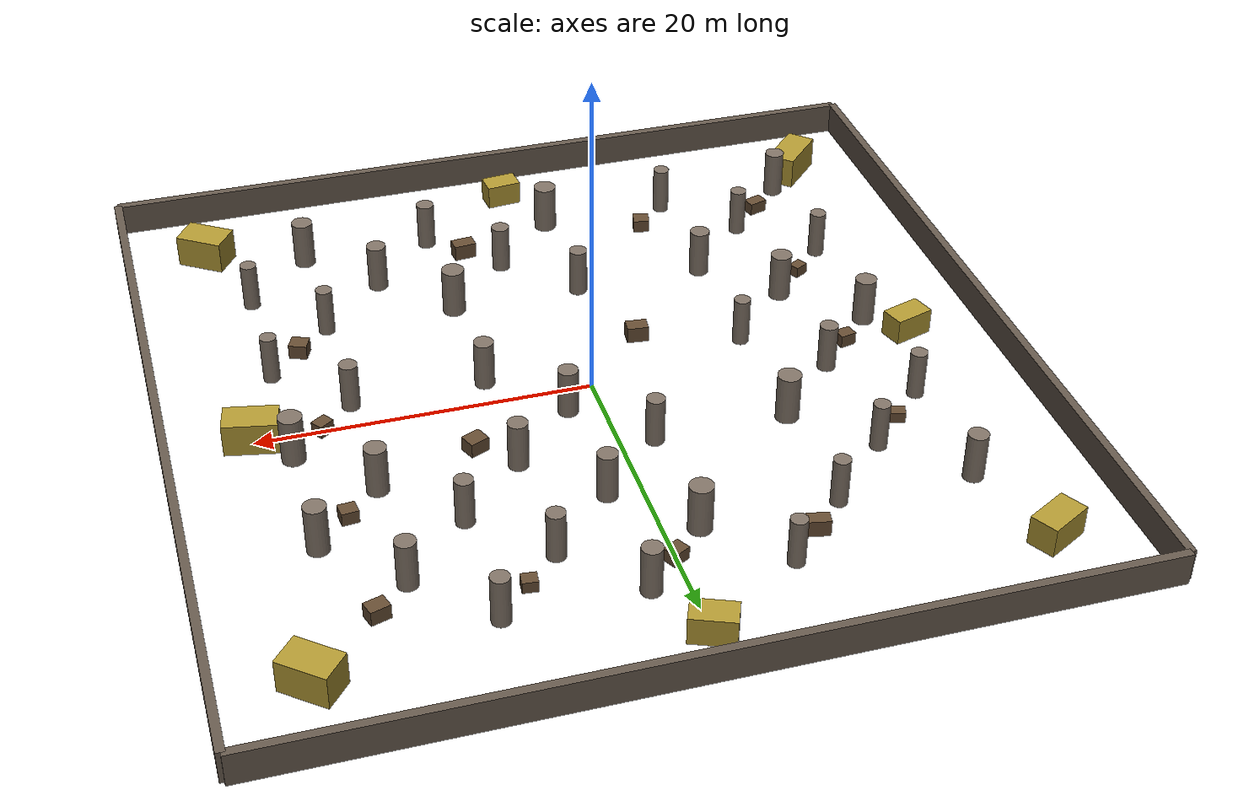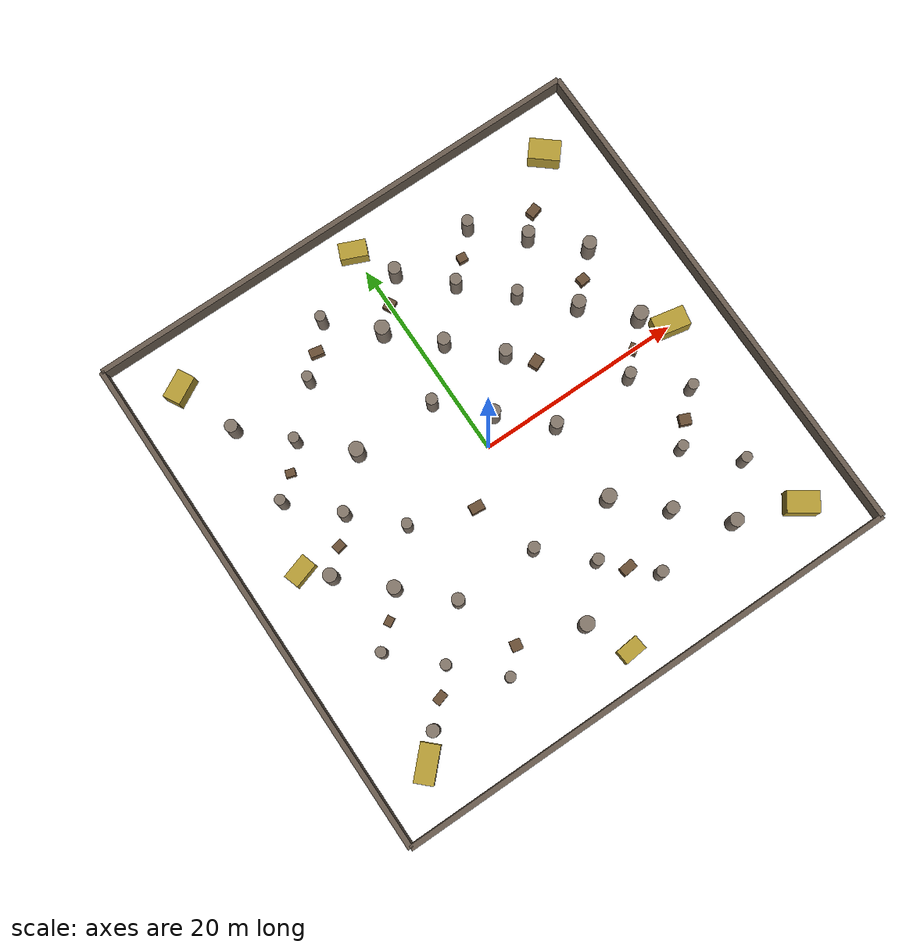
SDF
<sdf version="1.8">
 <world name="mining_arena">
  <physics name="default_physics" type="ode">
   <max_step_size>0.01</max_step_size>
   <real_time_factor>1.0</real_time_factor>
   <real_time_update_rate>100</real_time_update_rate>
   <ode>
    <solver><type>quick</type><iters>50</iters><sor>1.3</sor></solver>
    <constraints>
     <cfm>0.0</cfm>
     <erp>0.2</erp>
     <contact_max_correcting_vel>100.0</contact_max_correcting_vel>
     <contact_surface_layer>0.001</contact_surface_layer>
    </constraints>
   </ode>
  </physics>
  <light name="sun" type="directional">
   <pose>0 0 50 0 0 0</pose>
   <diffuse>0.8 0.8 0.8 1</diffuse>
   <specular>0.2 0.2 0.2 1</specular>
   <attenuation>
    <range>1000</range>
    <constant>0.9</constant>
    <linear>0.01</linear>
    <quadratic>0.001</quadratic>
   </attenuation>
   <direction>-0.5 0.1 -0.9</direction>
  </light>
  <light name="ambient" type="point">
   <pose>0 0 10 0 0 0</pose>
   <diffuse>0.4 0.4 0.35 1</diffuse>
   <specular>0.1 0.1 0.1 1</specular>
   <attenuation>
    <range>100</range>
    <constant>0.5</constant>
    <linear>0.01</linear>
    <quadratic>0.001</quadratic>
   </attenuation>
  </light>
  <scene><ambient>0.3 0.3 0.28 1</ambient><background>0.1 0.1 0.1 1</background><shadows>true</shadows></scene>
  <model name="wall_north">
   <static>true</static>
   <pose>0 25 1 0 0 0</pose>
   <link name="wall_link">
    <collision name="collision"><geometry><box><size>50 0.5 2</size></box></geometry></collision>
    <visual name="visual">
     <geometry><box><size>50 0.5 2</size></box></geometry>
     <material><ambient>0.3 0.25 0.2 1</ambient><diffuse>0.4 0.35 0.3 1</diffuse></material>
    </visual>
   </link>
  </model>
  <model name="wall_south">
   <static>true</static>
   <pose>0 -25 1 0 0 0</pose>
   <link name="wall_link">
    <collision name="collision"><geometry><box><size>50 0.5 2</size></box></geometry></collision>
    <visual name="visual">
     <geometry><box><size>50 0.5 2</size></box></geometry>
     <material><ambient>0.3 0.25 0.2 1</ambient><diffuse>0.4 0.35 0.3 1</diffuse></material>
    </visual>
   </link>
  </model>
  <model name="wall_east">
   <static>true</static>
   <pose>25 0 1 0 0 0</pose>
   <link name="wall_link">
    <collision name="collision"><geometry><box><size>0.5 50 2</size></box></geometry></collision>
    <visual name="visual">
     <geometry><box><size>0.5 50 2</size></box></geometry>
     <material><ambient>0.3 0.25 0.2 1</ambient><diffuse>0.4 0.35 0.3 1</diffuse></material>
    </visual>
   </link>
  </model>
  <model name="wall_west">
   <static>true</static>
   <pose>-25 0 1 0 0 0</pose>
   <link name="wall_link">
    <collision name="collision"><geometry><box><size>0.5 50 2</size></box></geometry></collision>
    <visual name="visual">
     <geometry><box><size>0.5 50 2</size></box></geometry>
     <material><ambient>0.3 0.25 0.2 1</ambient><diffuse>0.4 0.35 0.3 1</diffuse></material>
    </visual>
   </link>
  </model>
  <model name="pillar_01">
   <static>true</static>
   <pose>-18 -18 1.5 0 0 0</pose>
   <link name="link">
    <collision name="c">
     <geometry><cylinder><radius>0.6</radius><length>3</length></cylinder></geometry>
    </collision>
    <visual name="v">
     <geometry><cylinder><radius>0.6</radius><length>3</length></cylinder></geometry>
     <material><ambient>0.35 0.3 0.25 1</ambient><diffuse>0.5 0.45 0.4 1</diffuse></material>
    </visual>
   </link>
  </model>
  <model name="pillar_02">
   <static>true</static>
   <pose>-10 -18 1.5 0 0 0</pose>
   <link name="link">
    <collision name="c">
     <geometry><cylinder><radius>0.5</radius><length>3</length></cylinder></geometry>
    </collision>
    <visual name="v">
     <geometry><cylinder><radius>0.5</radius><length>3</length></cylinder></geometry>
     <material><ambient>0.35 0.3 0.25 1</ambient><diffuse>0.5 0.45 0.4 1</diffuse></material>
    </visual>
   </link>
  </model>
  <model name="pillar_03">
   <static>true</static>
   <pose>-2 -18 1.5 0 0 0</pose>
   <link name="link">
    <collision name="c">
     <geometry><cylinder><radius>0.7</radius><length>3</length></cylinder></geometry>
    </collision>
    <visual name="v">
     <geometry><cylinder><radius>0.7</radius><length>3</length></cylinder></geometry>
     <material><ambient>0.35 0.3 0.25 1</ambient><diffuse>0.5 0.45 0.4 1</diffuse></material>
    </visual>
   </link>
  </model>
  <model name="pillar_04">
   <static>true</static>
   <pose>6 -18 1.5 0 0 0</pose>
   <link name="link">
    <collision name="c">
     <geometry><cylinder><radius>0.55</radius><length>3</length></cylinder></geometry>
    </collision>
    <visual name="v">
     <geometry><cylinder><radius>0.55</radius><length>3</length></cylinder></geometry>
     <material><ambient>0.35 0.3 0.25 1</ambient><diffuse>0.5 0.45 0.4 1</diffuse></material>
    </visual>
   </link>
  </model>
  <model name="pillar_05">
   <static>true</static>
   <pose>14 -18 1.5 0 0 0</pose>
   <link name="link">
    <collision name="c">
     <geometry><cylinder><radius>0.65</radius><length>3</length></cylinder></geometry>
    </collision>
    <visual name="v">
     <geometry><cylinder><radius>0.65</radius><length>3</length></cylinder></geometry>
     <material><ambient>0.35 0.3 0.25 1</ambient><diffuse>0.5 0.45 0.4 1</diffuse></material>
    </visual>
   </link>
  </model>
  <model name="pillar_06">
   <static>true</static>
   <pose>-18 -10 1.5 0 0 0</pose>
   <link name="link">
    <collision name="c">
     <geometry><cylinder><radius>0.5</radius><length>3</length></cylinder></geometry>
    </collision>
    <visual name="v">
     <geometry><cylinder><radius>0.5</radius><length>3</length></cylinder></geometry>
     <material><ambient>0.35 0.3 0.25 1</ambient><diffuse>0.5 0.45 0.4 1</diffuse></material>
    </visual>
   </link>
  </model>
  <model name="pillar_07">
   <static>true</static>
   <pose>-10 -10 1.5 0 0 0</pose>
   <link name="link">
    <collision name="c">
     <geometry><cylinder><radius>0.6</radius><length>3</length></cylinder></geometry>
    </collision>
    <visual name="v">
     <geometry><cylinder><radius>0.6</radius><length>3</length></cylinder></geometry>
     <material><ambient>0.35 0.3 0.25 1</ambient><diffuse>0.5 0.45 0.4 1</diffuse></material>
    </visual>
   </link>
  </model>
  <model name="pillar_08">
   <static>true</static>
   <pose>-2 -10 1.5 0 0 0</pose>
   <link name="link">
    <collision name="c">
     <geometry><cylinder><radius>0.55</radius><length>3</length></cylinder></geometry>
    </collision>
    <visual name="v">
     <geometry><cylinder><radius>0.55</radius><length>3</length></cylinder></geometry>
     <material><ambient>0.35 0.3 0.25 1</ambient><diffuse>0.5 0.45 0.4 1</diffuse></material>
    </visual>
   </link>
  </model>
  <model name="pillar_09">
   <static>true</static>
   <pose>6 -10 1.5 0 0 0</pose>
   <link name="link">
    <collision name="c">
     <geometry><cylinder><radius>0.7</radius><length>3</length></cylinder></geometry>
    </collision>
    <visual name="v">
     <geometry><cylinder><radius>0.7</radius><length>3</length></cylinder></geometry>
     <material><ambient>0.35 0.3 0.25 1</ambient><diffuse>0.5 0.45 0.4 1</diffuse></material>
    </visual>
   </link>
  </model>
  <model name="pillar_10">
   <static>true</static>
   <pose>14 -10 1.5 0 0 0</pose>
   <link name="link">
    <collision name="c">
     <geometry><cylinder><radius>0.5</radius><length>3</length></cylinder></geometry>
    </collision>
    <visual name="v">
     <geometry><cylinder><radius>0.5</radius><length>3</length></cylinder></geometry>
     <material><ambient>0.35 0.3 0.25 1</ambient><diffuse>0.5 0.45 0.4 1</diffuse></material>
    </visual>
   </link>
  </model>
  <model name="pillar_11">
   <static>true</static>
   <pose>-18 -2 1.5 0 0 0</pose>
   <link name="link">
    <collision name="c">
     <geometry><cylinder><radius>0.65</radius><length>3</length></cylinder></geometry>
    </collision>
    <visual name="v">
     <geometry><cylinder><radius>0.65</radius><length>3</length></cylinder></geometry>
     <material><ambient>0.35 0.3 0.25 1</ambient><diffuse>0.5 0.45 0.4 1</diffuse></material>
    </visual>
   </link>
  </model>
  <model name="pillar_12">
   <static>true</static>
   <pose>-10 -2 1.5 0 0 0</pose>
   <link name="link">
    <collision name="c">
     <geometry><cylinder><radius>0.5</radius><length>3</length></cylinder></geometry>
    </collision>
    <visual name="v">
     <geometry><cylinder><radius>0.5</radius><length>3</length></cylinder></geometry>
     <material><ambient>0.35 0.3 0.25 1</ambient><diffuse>0.5 0.45 0.4 1</diffuse></material>
    </visual>
   </link>
  </model>
  <model name="pillar_13">
   <static>true</static>
   <pose>6 -2 1.5 0 0 0</pose>
   <link name="link">
    <collision name="c">
     <geometry><cylinder><radius>0.6</radius><length>3</length></cylinder></geometry>
    </collision>
    <visual name="v">
     <geometry><cylinder><radius>0.6</radius><length>3</length></cylinder></geometry>
     <material><ambient>0.35 0.3 0.25 1</ambient><diffuse>0.5 0.45 0.4 1</diffuse></material>
    </visual>
   </link>
  </model>
  <model name="pillar_14">
   <static>true</static>
   <pose>14 -2 1.5 0 0 0</pose>
   <link name="link">
    <collision name="c">
     <geometry><cylinder><radius>0.55</radius><length>3</length></cylinder></geometry>
    </collision>
    <visual name="v">
     <geometry><cylinder><radius>0.55</radius><length>3</length></cylinder></geometry>
     <material><ambient>0.35 0.3 0.25 1</ambient><diffuse>0.5 0.45 0.4 1</diffuse></material>
    </visual>
   </link>
  </model>
  <model name="pillar_15">
   <static>true</static>
   <pose>-18 6 1.5 0 0 0</pose>
   <link name="link">
    <collision name="c">
     <geometry><cylinder><radius>0.5</radius><length>3</length></cylinder></geometry>
    </collision>
    <visual name="v">
     <geometry><cylinder><radius>0.5</radius><length>3</length></cylinder></geometry>
     <material><ambient>0.35 0.3 0.25 1</ambient><diffuse>0.5 0.45 0.4 1</diffuse></material>
    </visual>
   </link>
  </model>
  <model name="pillar_16">
   <static>true</static>
   <pose>-10 6 1.5 0 0 0</pose>
   <link name="link">
    <collision name="c">
     <geometry><cylinder><radius>0.7</radius><length>3</length></cylinder></geometry>
    </collision>
    <visual name="v">
     <geometry><cylinder><radius>0.7</radius><length>3</length></cylinder></geometry>
     <material><ambient>0.35 0.3 0.25 1</ambient><diffuse>0.5 0.45 0.4 1</diffuse></material>
    </visual>
   </link>
  </model>
  <model name="pillar_17">
   <static>true</static>
   <pose>-2 6 1.5 0 0 0</pose>
   <link name="link">
    <collision name="c">
     <geometry><cylinder><radius>0.55</radius><length>3</length></cylinder></geometry>
    </collision>
    <visual name="v">
     <geometry><cylinder><radius>0.55</radius><length>3</length></cylinder></geometry>
     <material><ambient>0.35 0.3 0.25 1</ambient><diffuse>0.5 0.45 0.4 1</diffuse></material>
    </visual>
   </link>
  </model>
  <model name="pillar_18">
   <static>true</static>
   <pose>6 6 1.5 0 0 0</pose>
   <link name="link">
    <collision name="c">
     <geometry><cylinder><radius>0.6</radius><length>3</length></cylinder></geometry>
    </collision>
    <visual name="v">
     <geometry><cylinder><radius>0.6</radius><length>3</length></cylinder></geometry>
     <material><ambient>0.35 0.3 0.25 1</ambient><diffuse>0.5 0.45 0.4 1</diffuse></material>
    </visual>
   </link>
  </model>
  <model name="pillar_19">
   <static>true</static>
   <pose>14 6 1.5 0 0 0</pose>
   <link name="link">
    <collision name="c">
     <geometry><cylinder><radius>0.65</radius><length>3</length></cylinder></geometry>
    </collision>
    <visual name="v">
     <geometry><cylinder><radius>0.65</radius><length>3</length></cylinder></geometry>
     <material><ambient>0.35 0.3 0.25 1</ambient><diffuse>0.5 0.45 0.4 1</diffuse></material>
    </visual>
   </link>
  </model>
  <model name="pillar_20">
   <static>true</static>
   <pose>-18 14 1.5 0 0 0</pose>
   <link name="link">
    <collision name="c">
     <geometry><cylinder><radius>0.6</radius><length>3</length></cylinder></geometry>
    </collision>
    <visual name="v">
     <geometry><cylinder><radius>0.6</radius><length>3</length></cylinder></geometry>
     <material><ambient>0.35 0.3 0.25 1</ambient><diffuse>0.5 0.45 0.4 1</diffuse></material>
    </visual>
   </link>
  </model>
  <model name="pillar_21">
   <static>true</static>
   <pose>-10 14 1.5 0 0 0</pose>
   <link name="link">
    <collision name="c">
     <geometry><cylinder><radius>0.5</radius><length>3</length></cylinder></geometry>
    </collision>
    <visual name="v">
     <geometry><cylinder><radius>0.5</radius><length>3</length></cylinder></geometry>
     <material><ambient>0.35 0.3 0.25 1</ambient><diffuse>0.5 0.45 0.4 1</diffuse></material>
    </visual>
   </link>
  </model>
  <model name="pillar_22">
   <static>true</static>
   <pose>-2 14 1.5 0 0 0</pose>
   <link name="link">
    <collision name="c">
     <geometry><cylinder><radius>0.7</radius><length>3</length></cylinder></geometry>
    </collision>
    <visual name="v">
     <geometry><cylinder><radius>0.7</radius><length>3</length></cylinder></geometry>
     <material><ambient>0.35 0.3 0.25 1</ambient><diffuse>0.5 0.45 0.4 1</diffuse></material>
    </visual>
   </link>
  </model>
  <model name="pillar_23">
   <static>true</static>
   <pose>6 14 1.5 0 0 0</pose>
   <link name="link">
    <collision name="c">
     <geometry><cylinder><radius>0.55</radius><length>3</length></cylinder></geometry>
    </collision>
    <visual name="v">
     <geometry><cylinder><radius>0.55</radius><length>3</length></cylinder></geometry>
     <material><ambient>0.35 0.3 0.25 1</ambient><diffuse>0.5 0.45 0.4 1</diffuse></material>
    </visual>
   </link>
  </model>
  <model name="pillar_24">
   <static>true</static>
   <pose>14 14 1.5 0 0 0</pose>
   <link name="link">
    <collision name="c">
     <geometry><cylinder><radius>0.6</radius><length>3</length></cylinder></geometry>
    </collision>
    <visual name="v">
     <geometry><cylinder><radius>0.6</radius><length>3</length></cylinder></geometry>
     <material><ambient>0.35 0.3 0.25 1</ambient><diffuse>0.5 0.45 0.4 1</diffuse></material>
    </visual>
   </link>
  </model>
  <model name="pillar_25">
   <static>true</static>
   <pose>-14 -14 1.5 0 0 0</pose>
   <link name="link">
    <collision name="c">
     <geometry><cylinder><radius>0.5</radius><length>3</length></cylinder></geometry>
    </collision>
    <visual name="v">
     <geometry><cylinder><radius>0.5</radius><length>3</length></cylinder></geometry>
     <material><ambient>0.35 0.3 0.25 1</ambient><diffuse>0.5 0.45 0.4 1</diffuse></material>
    </visual>
   </link>
  </model>
  <model name="pillar_26">
   <static>true</static>
   <pose>2 -14 1.5 0 0 0</pose>
   <link name="link">
    <collision name="c">
     <geometry><cylinder><radius>0.55</radius><length>3</length></cylinder></geometry>
    </collision>
    <visual name="v">
     <geometry><cylinder><radius>0.55</radius><length>3</length></cylinder></geometry>
     <material><ambient>0.35 0.3 0.25 1</ambient><diffuse>0.5 0.45 0.4 1</diffuse></material>
    </visual>
   </link>
  </model>
  <model name="pillar_27">
   <static>true</static>
   <pose>10 -14 1.5 0 0 0</pose>
   <link name="link">
    <collision name="c">
     <geometry><cylinder><radius>0.6</radius><length>3</length></cylinder></geometry>
    </collision>
    <visual name="v">
     <geometry><cylinder><radius>0.6</radius><length>3</length></cylinder></geometry>
     <material><ambient>0.35 0.3 0.25 1</ambient><diffuse>0.5 0.45 0.4 1</diffuse></material>
    </visual>
   </link>
  </model>
  <model name="pillar_28">
   <static>true</static>
   <pose>18 -14 1.5 0 0 0</pose>
   <link name="link">
    <collision name="c">
     <geometry><cylinder><radius>0.5</radius><length>3</length></cylinder></geometry>
    </collision>
    <visual name="v">
     <geometry><cylinder><radius>0.5</radius><length>3</length></cylinder></geometry>
     <material><ambient>0.35 0.3 0.25 1</ambient><diffuse>0.5 0.45 0.4 1</diffuse></material>
    </visual>
   </link>
  </model>
  <model name="pillar_29">
   <static>true</static>
   <pose>-14 -6 1.5 0 0 0</pose>
   <link name="link">
    <collision name="c">
     <geometry><cylinder><radius>0.65</radius><length>3</length></cylinder></geometry>
    </collision>
    <visual name="v">
     <geometry><cylinder><radius>0.65</radius><length>3</length></cylinder></geometry>
     <material><ambient>0.35 0.3 0.25 1</ambient><diffuse>0.5 0.45 0.4 1</diffuse></material>
    </visual>
   </link>
  </model>
  <model name="pillar_30">
   <static>true</static>
   <pose>18 -6 1.5 0 0 0</pose>
   <link name="link">
    <collision name="c">
     <geometry><cylinder><radius>0.5</radius><length>3</length></cylinder></geometry>
    </collision>
    <visual name="v">
     <geometry><cylinder><radius>0.5</radius><length>3</length></cylinder></geometry>
     <material><ambient>0.35 0.3 0.25 1</ambient><diffuse>0.5 0.45 0.4 1</diffuse></material>
    </visual>
   </link>
  </model>
  <model name="pillar_31">
   <static>true</static>
   <pose>-14 2 1.5 0 0 0</pose>
   <link name="link">
    <collision name="c">
     <geometry><cylinder><radius>0.55</radius><length>3</length></cylinder></geometry>
    </collision>
    <visual name="v">
     <geometry><cylinder><radius>0.55</radius><length>3</length></cylinder></geometry>
     <material><ambient>0.35 0.3 0.25 1</ambient><diffuse>0.5 0.45 0.4 1</diffuse></material>
    </visual>
   </link>
  </model>
  <model name="pillar_32">
   <static>true</static>
   <pose>2 2 1.5 0 0 0</pose>
   <link name="link">
    <collision name="c">
     <geometry><cylinder><radius>0.6</radius><length>3</length></cylinder></geometry>
    </collision>
    <visual name="v">
     <geometry><cylinder><radius>0.6</radius><length>3</length></cylinder></geometry>
     <material><ambient>0.35 0.3 0.25 1</ambient><diffuse>0.5 0.45 0.4 1</diffuse></material>
    </visual>
   </link>
  </model>
  <model name="pillar_33">
   <static>true</static>
   <pose>18 2 1.5 0 0 0</pose>
   <link name="link">
    <collision name="c">
     <geometry><cylinder><radius>0.7</radius><length>3</length></cylinder></geometry>
    </collision>
    <visual name="v">
     <geometry><cylinder><radius>0.7</radius><length>3</length></cylinder></geometry>
     <material><ambient>0.35 0.3 0.25 1</ambient><diffuse>0.5 0.45 0.4 1</diffuse></material>
    </visual>
   </link>
  </model>
  <model name="pillar_34">
   <static>true</static>
   <pose>-14 10 1.5 0 0 0</pose>
   <link name="link">
    <collision name="c">
     <geometry><cylinder><radius>0.5</radius><length>3</length></cylinder></geometry>
    </collision>
    <visual name="v">
     <geometry><cylinder><radius>0.5</radius><length>3</length></cylinder></geometry>
     <material><ambient>0.35 0.3 0.25 1</ambient><diffuse>0.5 0.45 0.4 1</diffuse></material>
    </visual>
   </link>
  </model>
  <model name="pillar_35">
   <static>true</static>
   <pose>2 10 1.5 0 0 0</pose>
   <link name="link">
    <collision name="c">
     <geometry><cylinder><radius>0.6</radius><length>3</length></cylinder></geometry>
    </collision>
    <visual name="v">
     <geometry><cylinder><radius>0.6</radius><length>3</length></cylinder></geometry>
     <material><ambient>0.35 0.3 0.25 1</ambient><diffuse>0.5 0.45 0.4 1</diffuse></material>
    </visual>
   </link>
  </model>
  <model name="pillar_36">
   <static>true</static>
   <pose>10 10 1.5 0 0 0</pose>
   <link name="link">
    <collision name="c">
     <geometry><cylinder><radius>0.55</radius><length>3</length></cylinder></geometry>
    </collision>
    <visual name="v">
     <geometry><cylinder><radius>0.55</radius><length>3</length></cylinder></geometry>
     <material><ambient>0.35 0.3 0.25 1</ambient><diffuse>0.5 0.45 0.4 1</diffuse></material>
    </visual>
   </link>
  </model>
  <model name="pillar_37">
   <static>true</static>
   <pose>18 10 1.5 0 0 0</pose>
   <link name="link">
    <collision name="c">
     <geometry><cylinder><radius>0.65</radius><length>3</length></cylinder></geometry>
    </collision>
    <visual name="v">
     <geometry><cylinder><radius>0.65</radius><length>3</length></cylinder></geometry>
     <material><ambient>0.35 0.3 0.25 1</ambient><diffuse>0.5 0.45 0.4 1</diffuse></material>
    </visual>
   </link>
  </model>
  <model name="pillar_38">
   <static>true</static>
   <pose>-6 18 1.5 0 0 0</pose>
   <link name="link">
    <collision name="c">
     <geometry><cylinder><radius>0.5</radius><length>3</length></cylinder></geometry>
    </collision>
    <visual name="v">
     <geometry><cylinder><radius>0.5</radius><length>3</length></cylinder></geometry>
     <material><ambient>0.35 0.3 0.25 1</ambient><diffuse>0.5 0.45 0.4 1</diffuse></material>
    </visual>
   </link>
  </model>
  <model name="pillar_39">
   <static>true</static>
   <pose>2 18 1.5 0 0 0</pose>
   <link name="link">
    <collision name="c">
     <geometry><cylinder><radius>0.6</radius><length>3</length></cylinder></geometry>
    </collision>
    <visual name="v">
     <geometry><cylinder><radius>0.6</radius><length>3</length></cylinder></geometry>
     <material><ambient>0.35 0.3 0.25 1</ambient><diffuse>0.5 0.45 0.4 1</diffuse></material>
    </visual>
   </link>
  </model>
  <model name="pillar_40">
   <static>true</static>
   <pose>10 18 1.5 0 0 0</pose>
   <link name="link">
    <collision name="c">
     <geometry><cylinder><radius>0.55</radius><length>3</length></cylinder></geometry>
    </collision>
    <visual name="v">
     <geometry><cylinder><radius>0.55</radius><length>3</length></cylinder></geometry>
     <material><ambient>0.35 0.3 0.25 1</ambient><diffuse>0.5 0.45 0.4 1</diffuse></material>
    </visual>
   </link>
  </model>
  <model name="ore_pile_01">
   <static>true</static>
   <pose>-16 -16 0.4 0 0 0.3</pose>
   <link name="link">
    <collision name="c"><geometry><box><size>1.2 0.8 0.8</size></box></geometry></collision>
    <visual name="v">
     <geometry><box><size>1.2 0.8 0.8</size></box></geometry>
     <material><ambient>0.25 0.2 0.15 1</ambient><diffuse>0.4 0.3 0.2 1</diffuse></material>
    </visual>
   </link>
  </model>
  <model name="ore_pile_02">
   <static>true</static>
   <pose>-8 -16 0.4 0 0 -0.2</pose>
   <link name="link">
    <collision name="c"><geometry><box><size>1.0 1.0 0.8</size></box></geometry></collision>
    <visual name="v">
     <geometry><box><size>1.0 1.0 0.8</size></box></geometry>
     <material><ambient>0.25 0.2 0.15 1</ambient><diffuse>0.4 0.3 0.2 1</diffuse></material>
    </visual>
   </link>
  </model>
  <model name="ore_pile_03">
   <static>true</static>
   <pose>4 -16 0.5 0 0 0.1</pose>
   <link name="link">
    <collision name="c"><geometry><box><size>1.4 0.9 1.0</size></box></geometry></collision>
    <visual name="v">
     <geometry><box><size>1.4 0.9 1.0</size></box></geometry>
     <material><ambient>0.25 0.2 0.15 1</ambient><diffuse>0.4 0.3 0.2 1</diffuse></material>
    </visual>
   </link>
  </model>
  <model name="ore_pile_04">
   <static>true</static>
   <pose>-16 -8 0.35 0 0 0.5</pose>
   <link name="link">
    <collision name="c"><geometry><box><size>0.9 0.7 0.7</size></box></geometry></collision>
    <visual name="v">
     <geometry><box><size>0.9 0.7 0.7</size></box></geometry>
     <material><ambient>0.25 0.2 0.15 1</ambient><diffuse>0.4 0.3 0.2 1</diffuse></material>
    </visual>
   </link>
  </model>
  <model name="ore_pile_05">
   <static>true</static>
   <pose>16 -8 0.45 0 0 -0.4</pose>
   <link name="link">
    <collision name="c"><geometry><box><size>1.1 1.0 0.9</size></box></geometry></collision>
    <visual name="v">
     <geometry><box><size>1.1 1.0 0.9</size></box></geometry>
     <material><ambient>0.25 0.2 0.15 1</ambient><diffuse>0.4 0.3 0.2 1</diffuse></material>
    </visual>
   </link>
  </model>
  <model name="ore_pile_06">
   <static>true</static>
   <pose>-16 0 0.4 0 0 0.2</pose>
   <link name="link">
    <collision name="c"><geometry><box><size>1.0 0.8 0.8</size></box></geometry></collision>
    <visual name="v">
     <geometry><box><size>1.0 0.8 0.8</size></box></geometry>
     <material><ambient>0.25 0.2 0.15 1</ambient><diffuse>0.4 0.3 0.2 1</diffuse></material>
    </visual>
   </link>
  </model>
  <model name="ore_pile_07">
   <static>true</static>
   <pose>-4 -4 0.5 0 0 -0.1</pose>
   <link name="link">
    <collision name="c"><geometry><box><size>1.3 0.9 1.0</size></box></geometry></collision>
    <visual name="v">
     <geometry><box><size>1.3 0.9 1.0</size></box></geometry>
     <material><ambient>0.25 0.2 0.15 1</ambient><diffuse>0.4 0.3 0.2 1</diffuse></material>
    </visual>
   </link>
  </model>
  <model name="ore_pile_08">
   <static>true</static>
   <pose>16 0 0.4 0 0 0.6</pose>
   <link name="link">
    <collision name="c"><geometry><box><size>1.0 0.8 0.8</size></box></geometry></collision>
    <visual name="v">
     <geometry><box><size>1.0 0.8 0.8</size></box></geometry>
     <material><ambient>0.25 0.2 0.15 1</ambient><diffuse>0.4 0.3 0.2 1</diffuse></material>
    </visual>
   </link>
  </model>
  <model name="ore_pile_09">
   <static>true</static>
   <pose>-16 8 0.35 0 0 -0.3</pose>
   <link name="link">
    <collision name="c"><geometry><box><size>0.9 0.7 0.7</size></box></geometry></collision>
    <visual name="v">
     <geometry><box><size>0.9 0.7 0.7</size></box></geometry>
     <material><ambient>0.25 0.2 0.15 1</ambient><diffuse>0.4 0.3 0.2 1</diffuse></material>
    </visual>
   </link>
  </model>
  <model name="ore_pile_10">
   <static>true</static>
   <pose>8 4 0.45 0 0 0.4</pose>
   <link name="link">
    <collision name="c"><geometry><box><size>1.2 1.0 0.9</size></box></geometry></collision>
    <visual name="v">
     <geometry><box><size>1.2 1.0 0.9</size></box></geometry>
     <material><ambient>0.25 0.2 0.15 1</ambient><diffuse>0.4 0.3 0.2 1</diffuse></material>
    </visual>
   </link>
  </model>
  <model name="ore_pile_11">
   <static>true</static>
   <pose>16 8 0.4 0 0 0.1</pose>
   <link name="link">
    <collision name="c"><geometry><box><size>1.0 0.9 0.8</size></box></geometry></collision>
    <visual name="v">
     <geometry><box><size>1.0 0.9 0.8</size></box></geometry>
     <material><ambient>0.25 0.2 0.15 1</ambient><diffuse>0.4 0.3 0.2 1</diffuse></material>
    </visual>
   </link>
  </model>
  <model name="ore_pile_12">
   <static>true</static>
   <pose>-8 16 0.5 0 0 -0.2</pose>
   <link name="link">
    <collision name="c"><geometry><box><size>1.3 0.8 1.0</size></box></geometry></collision>
    <visual name="v">
     <geometry><box><size>1.3 0.8 1.0</size></box></geometry>
     <material><ambient>0.25 0.2 0.15 1</ambient><diffuse>0.4 0.3 0.2 1</diffuse></material>
    </visual>
   </link>
  </model>
  <model name="ore_pile_13">
   <static>true</static>
   <pose>0 16 0.4 0 0 0.5</pose>
   <link name="link">
    <collision name="c"><geometry><box><size>1.1 0.9 0.8</size></box></geometry></collision>
    <visual name="v">
     <geometry><box><size>1.1 0.9 0.8</size></box></geometry>
     <material><ambient>0.25 0.2 0.15 1</ambient><diffuse>0.4 0.3 0.2 1</diffuse></material>
    </visual>
   </link>
  </model>
  <model name="ore_pile_14">
   <static>true</static>
   <pose>8 16 0.35 0 0 -0.1</pose>
   <link name="link">
    <collision name="c"><geometry><box><size>0.9 0.8 0.7</size></box></geometry></collision>
    <visual name="v">
     <geometry><box><size>0.9 0.8 0.7</size></box></geometry>
     <material><ambient>0.25 0.2 0.15 1</ambient><diffuse>0.4 0.3 0.2 1</diffuse></material>
    </visual>
   </link>
  </model>
  <model name="ore_pile_15">
   <static>true</static>
   <pose>16 16 0.45 0 0 0.3</pose>
   <link name="link">
    <collision name="c"><geometry><box><size>1.2 0.9 0.9</size></box></geometry></collision>
    <visual name="v">
     <geometry><box><size>1.2 0.9 0.9</size></box></geometry>
     <material><ambient>0.25 0.2 0.15 1</ambient><diffuse>0.4 0.3 0.2 1</diffuse></material>
    </visual>
   </link>
  </model>
  <model name="equipment_01">
   <static>true</static>
   <pose>-20 -20 1.0 0 0 0.8</pose>
   <link name="link">
    <collision name="c"><geometry><box><size>3.5 1.8 2.0</size></box></geometry></collision>
    <visual name="v">
     <geometry><box><size>3.5 1.8 2.0</size></box></geometry>
     <material><ambient>0.5 0.4 0.1 1</ambient><diffuse>0.7 0.6 0.2 1</diffuse></material>
    </visual>
   </link>
  </model>
  <model name="equipment_02">
   <static>true</static>
   <pose>20 -20 1.0 0 0 -0.6</pose>
   <link name="link">
    <collision name="c"><geometry><box><size>3.0 2.0 2.0</size></box></geometry></collision>
    <visual name="v">
     <geometry><box><size>3.0 2.0 2.0</size></box></geometry>
     <material><ambient>0.5 0.4 0.1 1</ambient><diffuse>0.7 0.6 0.2 1</diffuse></material>
    </visual>
   </link>
  </model>
  <model name="equipment_03">
   <static>true</static>
   <pose>-20 0 0.8 0 0 0.3</pose>
   <link name="link">
    <collision name="c"><geometry><box><size>2.5 1.5 1.6</size></box></geometry></collision>
    <visual name="v">
     <geometry><box><size>2.5 1.5 1.6</size></box></geometry>
     <material><ambient>0.5 0.4 0.1 1</ambient><diffuse>0.7 0.6 0.2 1</diffuse></material>
    </visual>
   </link>
  </model>
  <model name="equipment_04">
   <static>true</static>
   <pose>20 0 1.0 0 0 -0.2</pose>
   <link name="link">
    <collision name="c"><geometry><box><size>3.2 1.9 2.0</size></box></geometry></collision>
    <visual name="v">
     <geometry><box><size>3.2 1.9 2.0</size></box></geometry>
     <material><ambient>0.5 0.4 0.1 1</ambient><diffuse>0.7 0.6 0.2 1</diffuse></material>
    </visual>
   </link>
  </model>
  <model name="equipment_05">
   <static>true</static>
   <pose>-20 20 0.9 0 0 0.5</pose>
   <link name="link">
    <collision name="c"><geometry><box><size>2.8 1.7 1.8</size></box></geometry></collision>
    <visual name="v">
     <geometry><box><size>2.8 1.7 1.8</size></box></geometry>
     <material><ambient>0.5 0.4 0.1 1</ambient><diffuse>0.7 0.6 0.2 1</diffuse></material>
    </visual>
   </link>
  </model>
  <model name="equipment_06">
   <static>true</static>
   <pose>20 20 1.0 0 0 -0.7</pose>
   <link name="link">
    <collision name="c"><geometry><box><size>3.0 2.0 2.0</size></box></geometry></collision>
    <visual name="v">
     <geometry><box><size>3.0 2.0 2.0</size></box></geometry>
     <material><ambient>0.5 0.4 0.1 1</ambient><diffuse>0.7 0.6 0.2 1</diffuse></material>
    </visual>
   </link>
  </model>
  <model name="equipment_07">
   <static>true</static>
   <pose>0 -22 0.75 0 0 0.1</pose>
   <link name="link">
    <collision name="c"><geometry><box><size>2.2 1.4 1.5</size></box></geometry></collision>
    <visual name="v">
     <geometry><box><size>2.2 1.4 1.5</size></box></geometry>
     <material><ambient>0.5 0.4 0.1 1</ambient><diffuse>0.7 0.6 0.2 1</diffuse></material>
    </visual>
   </link>
  </model>
  <model name="equipment_08">
   <static>true</static>
   <pose>0 22 0.85 0 0 -0.4</pose>
   <link name="link">
    <collision name="c"><geometry><box><size>2.6 1.6 1.7</size></box></geometry></collision>
    <visual name="v">
     <geometry><box><size>2.6 1.6 1.7</size></box></geometry>
     <material><ambient>0.5 0.4 0.1 1</ambient><diffuse>0.7 0.6 0.2 1</diffuse></material>
    </visual>
   </link>
  </model>
 </world>
</sdf>
